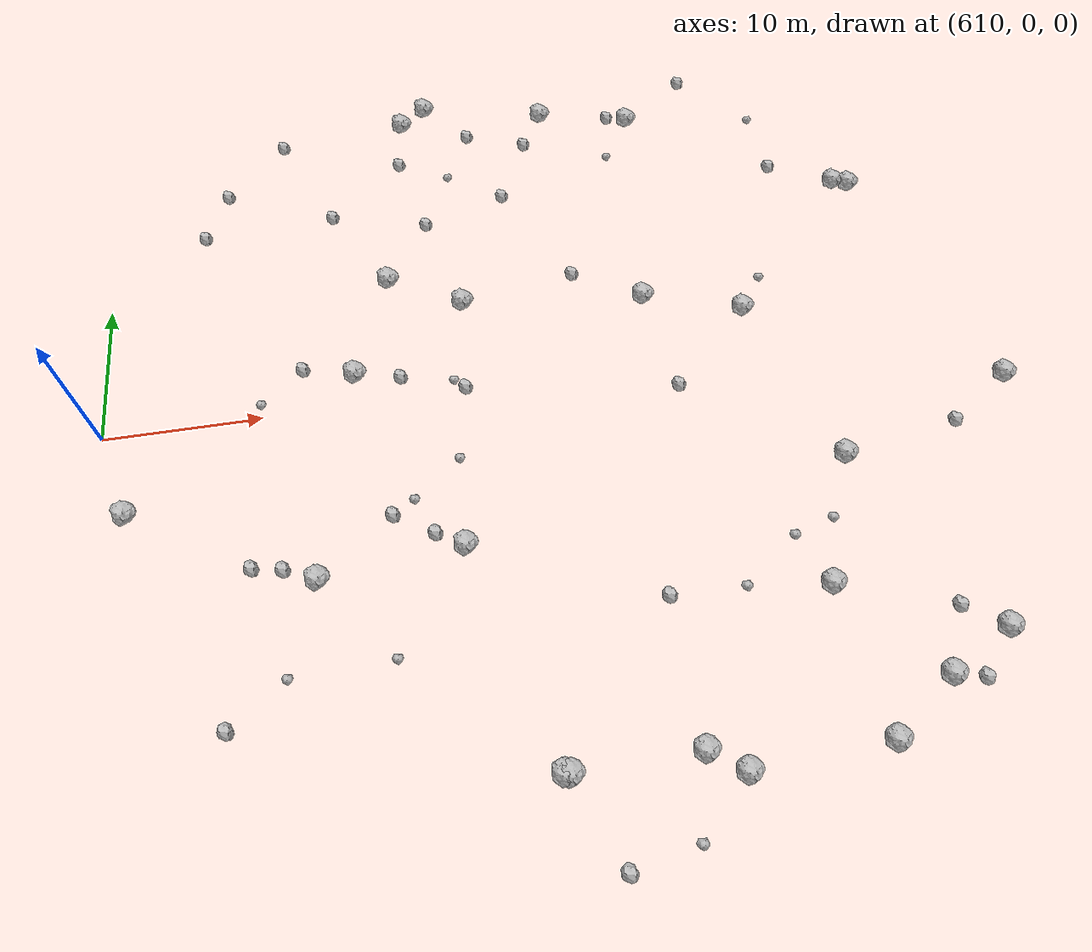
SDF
<sdf version="1.6">
 <world name="default">
  <include><uri>model://sun</uri></include>
  <model name="rock1_16_3">
   <include><uri>model://rock1</uri><pose>655.6154099495819 -8.444776169487398 0.5 0 0 0</pose></include>
  </model>
  <model name="rock1_16_4">
   <include><uri>model://rock1</uri><pose>661.2720041462402 -20.56565483840693 0.5 0 0 0</pose></include>
  </model>
  <model name="rock1_16_5">
   <include><uri>model://rock1</uri><pose>642.8746223194723 -24.476058116696997 0.5 0 0 0</pose></include>
  </model>
  <model name="rock1_16_6">
   <include><uri>model://rock1</uri><pose>635.6295413197528 -24.54068800926433 0.5 0 0 0</pose></include>
  </model>
  <model name="rock1_16_7">
   <include><uri>model://rock1</uri><pose>625.9852307979751 2.2944595613061836 0.5 0 0 0</pose></include>
  </model>
  <model name="rock1_16_8">
   <include><uri>model://rock1</uri><pose>611.8249146978072 -5.681860138270501 0.5 0 0 0</pose></include>
  </model>
  <model name="rock1_16_9">
   <include><uri>model://rock1</uri><pose>645.7630216691989 5.656797119050275 0.5 0 0 0</pose></include>
  </model>
  <model name="rock1_16_10">
   <include><uri>model://rock1</uri><pose>652.986267308079 -25.53851150290957 0.5 0 0 0</pose></include>
  </model>
  <model name="rock1_16_11">
   <include><uri>model://rock1</uri><pose>667.5935429892016 -4.30334727539185 0.5 0 0 0</pose></include>
  </model>
  <model name="rock1_16_12">
   <include><uri>model://rock1</uri><pose>635.3292898238093 -24.459555984004027 0.5 0 0 0</pose></include>
  </model>
  <model name="rock1_16_13">
   <include><uri>model://rock1</uri><pose>657.1643581449218 -22.64289674237908 0.5 0 0 0</pose></include>
  </model>
  <model name="rock1_16_14">
   <include><uri>model://rock1</uri><pose>623.0350941481739 -11.613770808701286 0.5 0 0 0</pose></include>
  </model>
  <model name="rock1_16_15">
   <include><uri>model://rock1</uri><pose>630.8456632833479 24.739371578402384 0.5 0 0 0</pose></include>
  </model>
  <model name="rock1_16_16">
   <include><uri>model://rock1</uri><pose>632.6836410080348 26.188167124354706 0.5 0 0 0</pose></include>
  </model>
  <model name="rock1_16_17">
   <include><uri>model://rock1</uri><pose>633.5365876369735 7.060216138781286 0.5 0 0 0</pose></include>
  </model>
  <model name="rock1_16_18">
   <include><uri>model://rock1</uri><pose>628.6947997776169 9.755907159623462 0.5 0 0 0</pose></include>
  </model>
  <model name="rock1_16_19">
   <include><uri>model://rock1</uri><pose>652.2149096358686 3.5822656309910883 0.5 0 0 0</pose></include>
  </model>
  <model name="rock1_16_20">
   <include><uri>model://rock1</uri><pose>644.8142533033224 -25.87477499223536 0.5 0 0 0</pose></include>
  </model>
  <model name="rock1_16_21">
   <include><uri>model://rock1</uri><pose>647.9578817602247 22.672255581879988 0.5 0 0 0</pose></include>
  </model>
  <model name="rock1_16_22">
   <include><uri>model://rock1</uri><pose>641.4757646005114 24.21202388279194 0.5 0 0 0</pose></include>
  </model>
  <model name="rock1_16_23">
   <include><uri>model://rock1</uri><pose>661.7474663167386 13.886879989899356 0.5 0 0 0</pose></include>
  </model>
  <model name="rock1_16_24">
   <include><uri>model://rock1</uri><pose>631.7234260855333 -10.808963985381009 0.5 0 0 0</pose></include>
  </model>
  <model name="rock1_16_25">
   <include><uri>model://rock1</uri><pose>652.2857848996221 -16.53517527918597 0.5 0 0 0</pose></include>
  </model>
  <model name="rock1_16_26">
   <include><uri>model://rock1</uri><pose>662.7791190955603 13.487744305266006 0.5 0 0 0</pose></include>
  </model>
  <model name="rock2_16_0">
   <include><uri>model://rock2</uri><pose>642.8268235301992 -15.763830783952175 0.3 0 0 0</pose></include>
  </model>
  <model name="rock2_16_1">
   <include><uri>model://rock2</uri><pose>630.2937041396885 20.662475969319765 0.3 0 0 0</pose></include>
  </model>
  <model name="rock2_16_2">
   <include><uri>model://rock2</uri><pose>621.0600632155614 -10.705955546653488 0.3 0 0 0</pose></include>
  </model>
  <model name="rock2_16_3">
   <include><uri>model://rock2</uri><pose>616.2052620415014 15.566032590269977 0.3 0 0 0</pose></include>
  </model>
  <model name="rock2_16_4">
   <include><uri>model://rock2</uri><pose>657.4435760110418 16.143451337177495 0.3 0 0 0</pose></include>
  </model>
  <model name="rock2_16_5">
   <include><uri>model://rock2</uri><pose>637.6851400294526 -29.66869884983367 0.3 0 0 0</pose></include>
  </model>
  <model name="rock2_16_6">
   <include><uri>model://rock2</uri><pose>659.0094406573162 -18.922042639884165 0.3 0 0 0</pose></include>
  </model>
  <model name="rock2_16_7">
   <include><uri>model://rock2</uri><pose>628.8671915975095 1.6325462580510468 0.3 0 0 0</pose></include>
  </model>
  <model name="rock2_16_8">
   <include><uri>model://rock2</uri><pose>621.8524956995175 23.773382148649816 0.3 0 0 0</pose></include>
  </model>
  <model name="rock2_16_9">
   <include><uri>model://rock2</uri><pose>646.5047724778595 23.1674449506907 0.3 0 0 0</pose></include>
  </model>
  <model name="rock2_16_10">
   <include><uri>model://rock2</uri><pose>625.1622278544238 16.163215928367308 0.3 0 0 0</pose></include>
  </model>
  <model name="rock2_16_11">
   <include><uri>model://rock2</uri><pose>631.716185663197 14.44710505040311 0.3 0 0 0</pose></include>
  </model>
  <model name="rock2_16_12">
   <include><uri>model://rock2</uri><pose>652.7878600921912 26.14682442309165 0.3 0 0 0</pose></include>
  </model>
  <model name="rock2_16_13">
   <include><uri>model://rock2</uri><pose>619.2486674933923 -10.342403385516103 0.3 0 0 0</pose></include>
  </model>
  <model name="rock2_16_14">
   <include><uri>model://rock2</uri><pose>630.0131710564104 -9.76178214990055 0.3 0 0 0</pose></include>
  </model>
  <model name="rock2_16_15">
   <include><uri>model://rock2</uri><pose>632.9463451830676 0.19373189903554788 0.3 0 0 0</pose></include>
  </model>
  <model name="rock2_16_16">
   <include><uri>model://rock2</uri><pose>639.7536806378761 21.32815278060479 0.3 0 0 0</pose></include>
  </model>
  <model name="rock2_16_17">
   <include><uri>model://rock2</uri><pose>635.6051364376857 22.809299008179323 0.3 0 0 0</pose></include>
  </model>
  <model name="rock2_16_18">
   <include><uri>model://rock2</uri><pose>646.5604218601871 -1.7787197190610264 0.3 0 0 0</pose></include>
  </model>
  <model name="rock2_16_19">
   <include><uri>model://rock2</uri><pose>641.2558232277154 8.339866208623064 0.3 0 0 0</pose></include>
  </model>
  <model name="rock2_16_20">
   <include><uri>model://rock2</uri><pose>617.7791363279015 19.328425946072038 0.3 0 0 0</pose></include>
  </model>
  <model name="rock2_16_21">
   <include><uri>model://rock2</uri><pose>622.6330471030409 3.180773239660482 0.3 0 0 0</pose></include>
  </model>
  <model name="rock2_16_22">
   <include><uri>model://rock2</uri><pose>658.9163446887381 -23.106013576848177 0.3 0 0 0</pose></include>
  </model>
  <model name="rock2_16_23">
   <include><uri>model://rock2</uri><pose>637.4303643594162 16.323823918600816 0.3 0 0 0</pose></include>
  </model>
  <model name="rock2_16_24">
   <include><uri>model://rock2</uri><pose>663.2225507853442 -7.148874627690184 0.3 0 0 0</pose></include>
  </model>
  <model name="rock2_16_25">
   <include><uri>model://rock2</uri><pose>617.8742486470383 -19.522750015938172 0.3 0 0 0</pose></include>
  </model>
  <model name="rock2_16_26">
   <include><uri>model://rock2</uri><pose>627.6143657605314 -8.188261734643309 0.3 0 0 0</pose></include>
  </model>
  <model name="rock3_16_0">
   <include><uri>model://rock3</uri><pose>641.5804264059637 -28.945038201240514 0.2 0 0 0</pose></include>
  </model>
  <model name="rock3_16_1">
   <include><uri>model://rock3</uri><pose>619.8999293635931 0.8818579813038738 0.2 0 0 0</pose></include>
  </model>
  <model name="rock3_16_2">
   <include><uri>model://rock3</uri><pose>621.1529426774408 -17.20637165638631 0.2 0 0 0</pose></include>
  </model>
  <model name="rock3_16_3">
   <include><uri>model://rock3</uri><pose>631.9883784304609 -4.965452118414561 0.2 0 0 0</pose></include>
  </model>
  <model name="rock3_16_4">
   <include><uri>model://rock3</uri><pose>632.267244496366 0.8553652651719226 0.2 0 0 0</pose></include>
  </model>
  <model name="rock3_16_5">
   <include><uri>model://rock3</uri><pose>645.7430656900437 19.09107000539497 0.2 0 0 0</pose></include>
  </model>
  <model name="rock3_16_6">
   <include><uri>model://rock3</uri><pose>657.2167582796795 21.249878732544317 0.2 0 0 0</pose></include>
  </model>
  <model name="rock3_16_7">
   <include><uri>model://rock3</uri><pose>628.9763966954733 -7.351622822336562 0.2 0 0 0</pose></include>
  </model>
  <model name="rock3_16_8">
   <include><uri>model://rock3</uri><pose>653.9983800640055 6.001103787714484 0.2 0 0 0</pose></include>
  </model>
  <model name="rock3_16_9">
   <include><uri>model://rock3</uri><pose>653.5563209916711 -12.500765837040419 0.2 0 0 0</pose></include>
  </model>
  <model name="rock3_16_10">
   <include><uri>model://rock3</uri><pose>647.3548159489588 -15.908769018809059 0.2 0 0 0</pose></include>
  </model>
  <model name="rock3_16_11">
   <include><uri>model://rock3</uri><pose>650.983097342751 -13.243305841620263 0.2 0 0 0</pose></include>
  </model>
  <model name="rock3_16_12">
   <include><uri>model://rock3</uri><pose>633.7311711513994 18.8232152790668 0.2 0 0 0</pose></include>
  </model>
  <model name="rock3_16_13">
   <include><uri>model://rock3</uri><pose>627.2011317549587 -17.01436967940453 0.2 0 0 0</pose></include>
  </model>
 </world>
</sdf>
